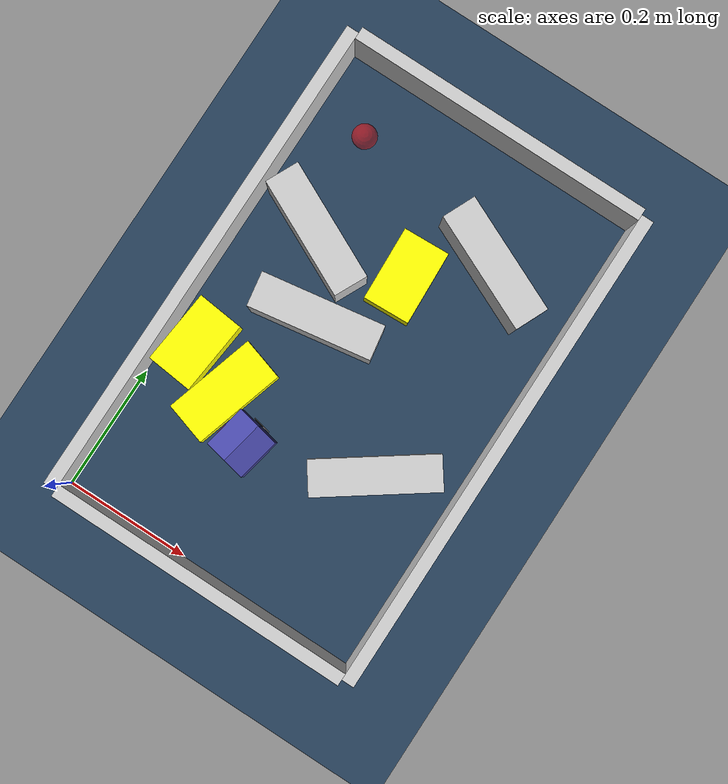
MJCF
<?xml version='1.0' encoding='utf-8'?>
<mujoco model="real_buildable">
  <compiler angle="degree" />
  <option timestep="0.002" integrator="implicitfast" iterations="100" cone="elliptic" />
  <default>
    <geom density="1" />
  </default>
  <asset>
    <texture builtin="gradient" height="3072" rgb1="0.3 0.5 0.7" rgb2="0 0 0" type="skybox" width="512" />
    <texture builtin="checker" height="300" mark="edge" markrgb="0.8 0.8 0.8" name="groundplane" rgb1="0.2 0.3 0.4" rgb2="0.1 0.2 0.3" type="2d" width="300" />
    <material name="groundplane" reflectance="0.2" texrepeat="5 5" texture="groundplane" texuniform="true" />
  </asset>
  <worldbody>
    <light dir="0 0 -1" directional="true" pos="0 0 1.5" />
    <geom name="floor" type="plane" condim="4" friction="0.5 0.005 0.001" material="groundplane" size="0 0 0.05" />
    <body name="walls">
      <geom name="wall_boundary_left" type="box" condim="4" friction="1.0 0.005 0.0001" rgba="0.8 0.8 0.8 1" pos="-0.010000 0.387500 0.050000" euler="0 0 0.000000" size="0.010000 0.397500 0.050000" />
      <geom name="wall_boundary_right" type="box" condim="4" friction="1.0 0.005 0.0001" rgba="0.8 0.8 0.8 1" pos="0.500000 0.387500 0.050000" euler="0 0 0.000000" size="0.010000 0.397500 0.050000" />
      <geom name="wall_boundary_bottom" type="box" condim="4" friction="1.0 0.005 0.0001" rgba="0.8 0.8 0.8 1" pos="0.245000 -0.010000 0.050000" euler="0 0 0.000000" size="0.245000 0.010000 0.050000" />
      <geom name="wall_boundary_top" type="box" condim="4" friction="1.0 0.005 0.0001" rgba="0.8 0.8 0.8 1" pos="0.245000 0.785000 0.050000" euler="0 0 0.000000" size="0.245000 0.010000 0.050000" />
      <geom name="wall_inner_1" type="box" condim="4" friction="1.0 0.005 0.0001" rgba="0.8 0.8 0.8 1" pos="0.372318 0.258047 0.050000" euler="0 0 215.439866" size="0.097500 0.027500 0.050000" />
      <geom name="wall_inner_2" type="box" condim="4" friction="1.0 0.005 0.0001" rgba="0.8 0.8 0.8 1" pos="0.174931 0.404079 0.050000" euler="0 0 189.176888" size="0.097500 0.027500 0.050000" />
      <geom name="wall_inner_3" type="box" condim="4" friction="1.0 0.005 0.0001" rgba="0.8 0.8 0.8 1" pos="0.106000 0.510000 0.050000" euler="0 0 154.200000" size="0.097500 0.027500 0.050000" />
      <geom name="wall_inner_4" type="box" condim="4" friction="1.0 0.005 0.0001" rgba="0.8 0.8 0.8 1" pos="0.350000 0.610000 0.050000" euler="0 0 155.700000" size="0.097500 0.027500 0.050000" />
    </body>
    <body name="car" pos="0.18452876554817199 0.19102892991750489 0.01" quat="0.10031745408957242 0 0 0.99495548061457828">
      <freejoint name="car_freejoint" />
      <inertial pos="0 0 0.0375" mass="0.35" diaginertia="0.000266 0.000266 0.000286" />
      <geom name="front_chassis_collision" type="box" pos="0.0175 0 0.0375" size="0.0175 0.035 0.0325" rgba="0.3 0.3 0.7 1" />
      <geom name="rear_chassis_collision" type="box" pos="-0.0175 0 0.0375" size="0.0175 0.035 0.0325" rgba="0.25 0.25 0.6 1" />
      <geom name="front_marker" type="box" pos="0.034 0 0.0505" size="0.002 0.015 0.01" rgba="1 0.2 0.2 1" contype="0" conaffinity="0" />
      <body name="rear_support_body" pos="-0.03 0 0.0025">
        <joint name="rear_caster_joint" type="ball" damping="0.0001" />
        <inertial pos="0 0 0" mass="0.025" diaginertia="0.000001 0.000001 0.000001" />
        <geom name="rear_support" type="sphere" pos="0 0 0" size="0.0025" friction="0 0 0" rgba="0.7 0.1 0.1 1" />
      </body>
      <body name="front_support_body" pos="0.03 0 0.0025">
        <joint name="front_caster_joint" type="ball" damping="0.0001" />
        <inertial pos="0 0 0" mass="0.025" diaginertia="0.000001 0.000001 0.000001" />
        <geom name="front_support" type="sphere" pos="0 0 0" size="0.0025" friction="0 0 0" rgba="0.1 0.7 0.1 1" />
      </body>
      <body name="left_wheel" pos="0 0.0375 0.015">
        <inertial pos="0 0 0" mass="0.05" diaginertia="0.000003 0.000006 0.000003" />
        <joint name="left_wheel_joint" type="hinge" axis="0 1 0" damping="0.01" armature="0.0001" />
        <geom name="left_wheel_collision" type="cylinder" size="0.015 0.0005" euler="90 0 0" rgba="0.1 0.1 0.1 1" />
      </body>
      <body name="right_wheel" pos="0 -0.0375 0.015">
        <inertial pos="0 0 0" mass="0.05" diaginertia="0.000003 0.000006 0.000003" />
        <joint name="right_wheel_joint" type="hinge" axis="0 1 0" damping="0.01" armature="0.0001" />
        <geom name="right_wheel_collision" type="cylinder" size="0.015 0.0005" euler="90 0 0" rgba="0.1 0.1 0.1 1" />
      </body>
    </body>
    <body name="obstacle_0_movable">
      <geom name="obstacle_0_movable" condim="4" pos="0.11880526337725521 0.23940461755005307 0.02" friction="1 0.005 0.0001" rgba="1 1 0 1" size="0.035000 0.075000 0.020000" type="box" mass="0.1" quat="0.14593471788606954 0 0 0.98929422221880647" />
      <joint type="free" />
    </body>
    <body name="obstacle_1_movable">
      <geom name="obstacle_1_movable" condim="4" pos="0.25099999999999995 0.52999999999999992 0.025000000000000001" friction="1 0.005 0.0001" rgba="1 1 0 1" size="0.037500 0.060000 0.025000" type="box" mass="0.1" quat="0.99976202707990913 0 0 0.02181488503456112" />
      <joint type="free" />
    </body>
    <body name="obstacle_2_movable">
      <geom name="obstacle_2_movable" condim="4" pos="0.043494244550607075 0.27641125267192745 0.025000000000000001" friction="1 0.005 0.0001" rgba="1 1 0 1" size="0.037500 0.060000 0.025000" type="box" mass="0.1" quat="0.99859298325839074 0 0 -0.053028801486620085" />
      <joint type="free" />
    </body>
    <site name="goal" type="sphere" pos="0.080000 0.680000 0.0" size="0.02" rgba="1 0 0 0.5" />
  </worldbody>
  <actuator>
    <velocity name="left_wheel_drive" joint="left_wheel_joint" ctrlrange="-25 25" kv="0.75" forcerange="-0.5 0.5" />
    <velocity name="right_wheel_drive" joint="right_wheel_joint" ctrlrange="-25 25" kv="0.75" forcerange="-0.5 0.5" />
  </actuator>
</mujoco>
